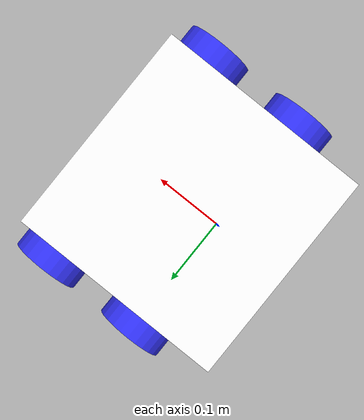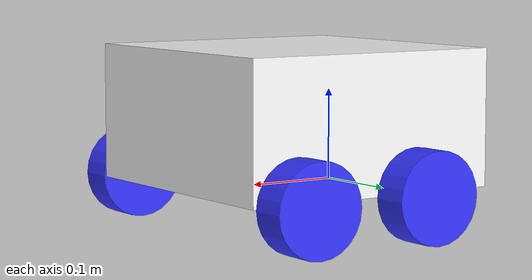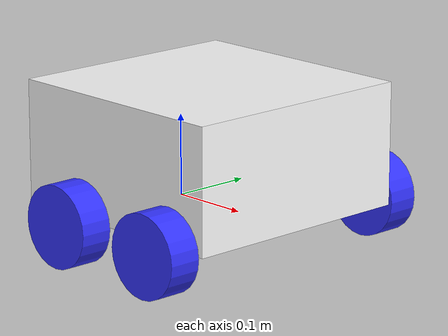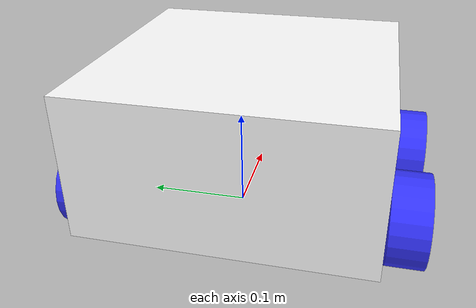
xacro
<?xml version="1.0"?>
<robot xmlns:xacro="http://www.ros.org/wiki/xacro" >

    <xacro:include filename="inertial_macros.xacro"/>

    <material name="white">
        <color rgba="1 1 1 1" />
    </material>

    <material name="orange">
        <color rgba="1 0.3 0.1 1"/>
    </material>

    <material name="blue">
        <color rgba="0.2 0.2 1 1"/>
    </material>

    <material name="black">
        <color rgba="0 0 0 1"/>
    </material>

    <material name="red">
        <color rgba="1 0 0 1"/>
    </material>

    <!-- BASE LINK -->

    <link name="base_link">

    </link>

    <!-- BASE_FOOTPRINT LINK -->

    <joint name="base_footprint_joint" type="fixed">
        <parent link="base_link"/>
        <child link="base_footprint"/>
        <origin xyz="0 0 0" rpy="0 0 0"/>
    </joint>

    <link name="base_footprint">
    </link>

    <!-- CHASSIS LINK -->

    <joint name="chassis_joint" type="fixed">
        <parent link="base_link"/>
        <child link="chassis"/>
        <origin xyz="-0.1 0 0"/>
    </joint>

    <link name="chassis">
        <visual>
            <origin xyz="0.15 0 0.075"/>
            <geometry>
                <box size="0.3 0.3 0.15"/>
            </geometry>
            <material name="white"/>
        </visual>
        <collision>
            <origin xyz="0.15 0 0.075"/>
            <geometry>
                <box size="0.3 0.3 0.15"/>
            </geometry>
        </collision>
        <xacro:inertial_box mass="0.5" x="0.3" y="0.3" z="0.15">
            <origin xyz="0.15 0 0.075" rpy="0 0 0"/>
        </xacro:inertial_box>
    </link>

    <gazebo reference="chassis">
        <material>Gazebo/White</material>
    </gazebo>

    <!-- LEFT  front WHEEL LINK -->

    <joint name="left_front_wheel_joint" type="continuous">
        <parent link="base_link"/>
        <child link="left_front_wheel"/>
        <origin xyz="0.15 0.175 0" rpy="-${pi/2} 0 0" />
        <axis xyz="0 0 1"/>
    </joint>

    <link name="left_front_wheel">
        <visual>
            <geometry>
                <cylinder radius="0.05" length="0.04"/>
            </geometry>
            <material name="blue"/>
        </visual>
        <collision>
            <geometry>
                <cylinder radius="0.05" length="0.04"/>
            </geometry>
        </collision>
        <xacro:inertial_cylinder mass="0.1" length="0.04" radius="0.05">
            <origin xyz="0 0 0" rpy="0 0 0"/>
        </xacro:inertial_cylinder>
    </link>

    <gazebo reference="left_front_wheel">
        <material>Gazebo/Blue</material>
    </gazebo>

    <!-- RIGHT WHEEL LINK -->

    <joint name="right_front_wheel_joint" type="continuous">
        <parent link="base_link"/>
        <child link="right_front_wheel"/>
        <origin xyz="0.15 -0.175 0" rpy="${pi/2} 0 0" />
        <axis xyz="0 0 -1"/>
    </joint>

    <link name="right_front_wheel">
        <visual>
            <geometry>
                <cylinder radius="0.05" length="0.04"/>
            </geometry>
            <material name="blue"/>
        </visual>
        <collision>
            <geometry>
                <cylinder radius="0.05" length="0.04"/>
            </geometry>
        </collision>
        <xacro:inertial_cylinder mass="0.1" length="0.04" radius="0.05">
            <origin xyz="0 0 0" rpy="0 0 0"/>
        </xacro:inertial_cylinder>
    </link>

    <gazebo reference="right_front_wheel">
        <material>Gazebo/Blue</material>
    </gazebo>

    <!-- CASTER WHEEL LINK -->

    <!-- left back wheel LINK  -->
    <joint name="left_back_wheel_joint" type="continuous">
        <parent link="base_link"/>
        <child link="left_back_wheel"/>
        <origin xyz="0.0 0.175 0" rpy="-${pi/2} 0 0" />
        <axis xyz="0 0 1"/>
    </joint>

    <link name="left_back_wheel">
        <visual>
            <geometry>
                <cylinder radius="0.05" length="0.04"/>
            </geometry>
            <material name="blue"/>
        </visual>
        <collision>
            <geometry>
                <cylinder radius="0.05" length="0.04"/>
            </geometry>
        </collision>
        <xacro:inertial_cylinder mass="0.1" length="0.04" radius="0.05">
            <origin xyz="0 0 0" rpy="0 0 0"/>
        </xacro:inertial_cylinder>
    </link>
    <gazebo reference="left_back_wheel">
        <material>Gazebo/Blue</material>
        <mu1>0.001</mu1>
        <mu2>0.001</mu2>
    </gazebo>

    <!-- RIGHT back WHEEL LINK -->

    <joint name="right_back_wheel_joint" type="continuous">
        <parent link="base_link"/>
        <child link="right_back_wheel"/>
        <origin xyz="0.0 -0.175 0" rpy="${pi/2} 0 0" />
        <axis xyz="0 0 -1"/>
    </joint>

    <link name="right_back_wheel">
        <visual>
            <geometry>
                <cylinder radius="0.05" length="0.04"/>
            </geometry>
            <material name="blue"/>
        </visual>
        <collision>
            <geometry>
                <cylinder radius="0.05" length="0.04"/>
            </geometry>
        </collision>
        <xacro:inertial_cylinder mass="0.1" length="0.04" radius="0.05">
            <origin xyz="0 0 0" rpy="0 0 0"/>
        </xacro:inertial_cylinder>

    </link>

    <gazebo reference="right_back_wheel">
        <material>Gazebo/Blue</material>
        <mu1>0.001</mu1>
        <mu2>0.001</mu2>
    </gazebo>

</robot>

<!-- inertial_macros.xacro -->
<robot xmlns:xacro="http://www.ros.org/wiki/xacro" >

    <xacro:macro name="inertial_sphere" params="mass radius *origin">
        <inertial>
            <xacro:insert_block name="origin"/>
            <mass value="${mass}" />
            <inertia ixx="${(2/5) * mass * (radius*radius)}" ixy="0.0" ixz="0.0"
                    iyy="${(2/5) * mass * (radius*radius)}" iyz="0.0"
                    izz="${(2/5) * mass * (radius*radius)}" />
        </inertial>
    </xacro:macro>

    <xacro:macro name="inertial_box" params="mass x y z *origin">
        <inertial>
            <xacro:insert_block name="origin"/>
            <mass value="${mass}" />
            <inertia ixx="${(1/12) * mass * (y*y+z*z)}" ixy="0.0" ixz="0.0"
                    iyy="${(1/12) * mass * (x*x+z*z)}" iyz="0.0"
                    izz="${(1/12) * mass * (x*x+y*y)}" />
        </inertial>
    </xacro:macro>

    <xacro:macro name="inertial_cylinder" params="mass length radius *origin">
        <inertial>
            <xacro:insert_block name="origin"/>
            <mass value="${mass}" />
            <inertia ixx="${(1/12) * mass * (3*radius*radius + length*length)}" ixy="0.0" ixz="0.0"
                    iyy="${(1/12) * mass * (3*radius*radius + length*length)}" iyz="0.0"
                    izz="${(1/2) * mass * (radius*radius)}" />
        </inertial>
    </xacro:macro>

</robot>
